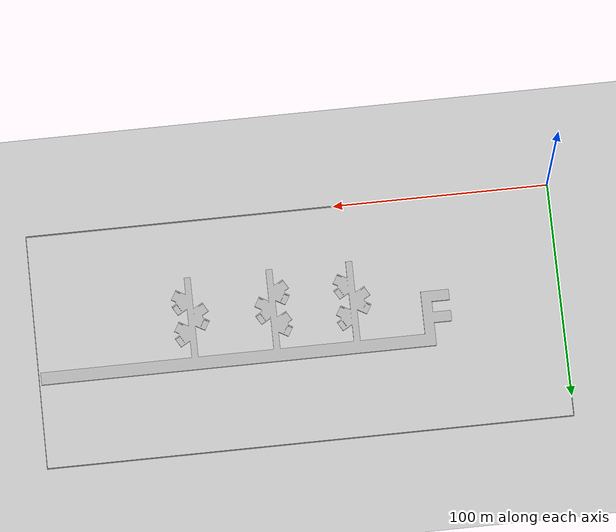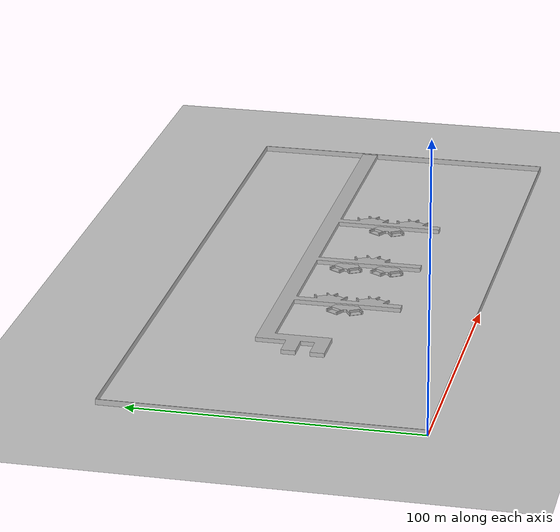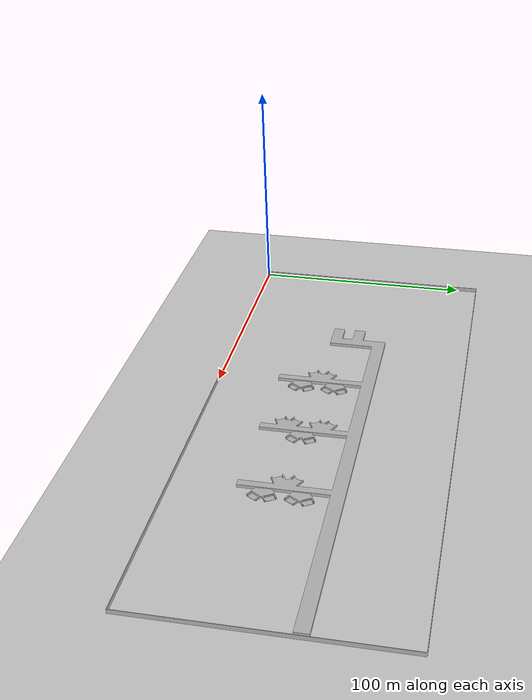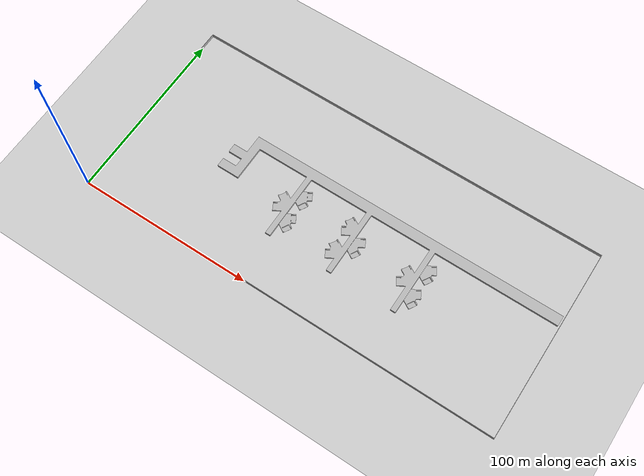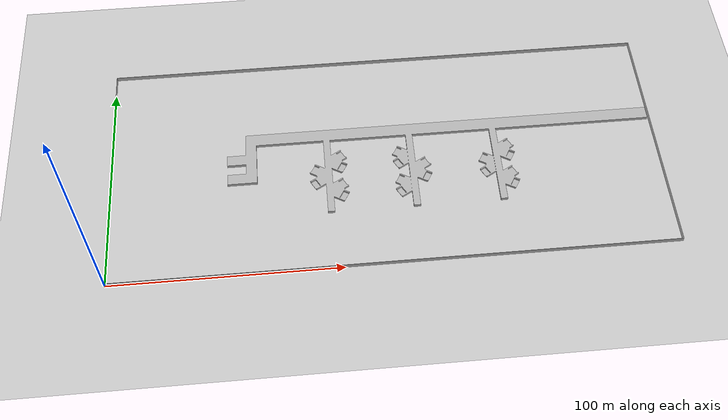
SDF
<?xml version="1.0"?>
<sdf version="1.6">
  <world name="default">

    <include>
      <uri>model://ground_plane</uri>
    </include>

    <include>
      <uri>model://sun</uri>
    </include>
 <!--#### Robot model NOT USED ####-->

 <!--#### Walls model ####-->
 <model name="Walls">
    <pose>0 0 0  0 0 0</pose>
    <static>true</static>
    <link name="walls">
      <visual name="Walls_visual">
        <geometry>
 	             <mesh><uri>model://01_factory.dae</uri></mesh>
        </geometry>
      </visual>
    <collision name="Walls_collision">
        <geometry>
	              <mesh><uri>model://01_factory.dae</uri></mesh>
        </geometry>
      </collision>
    </link>
  </model>

  </world>
</sdf>
